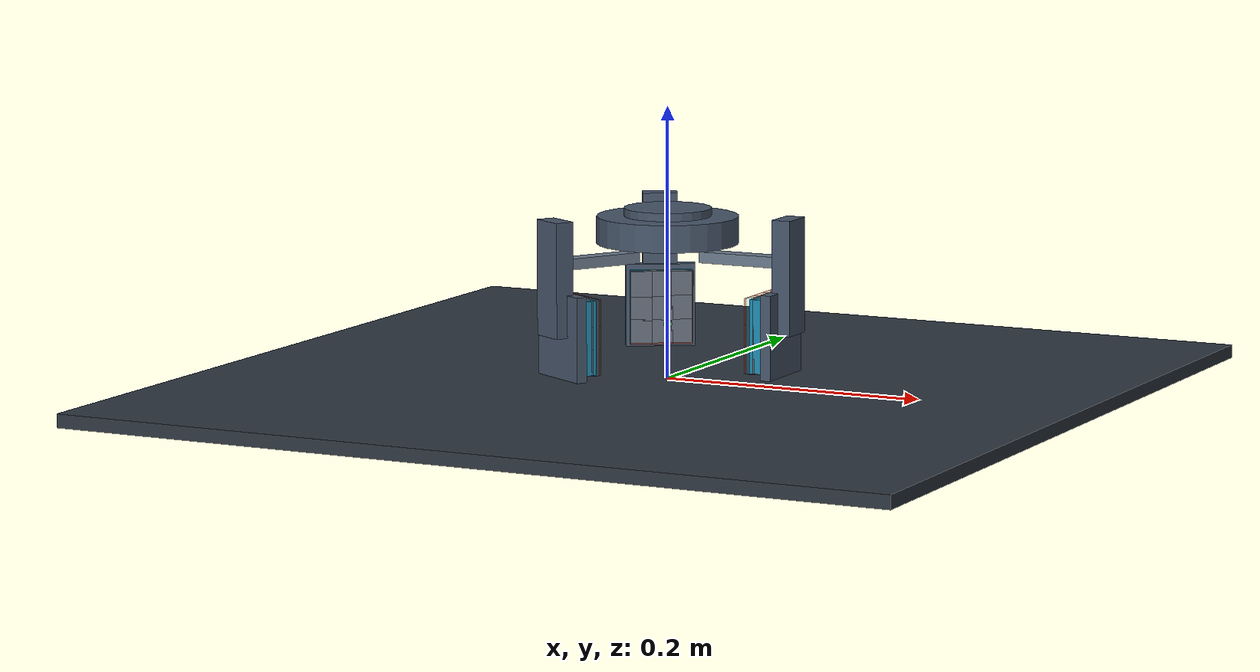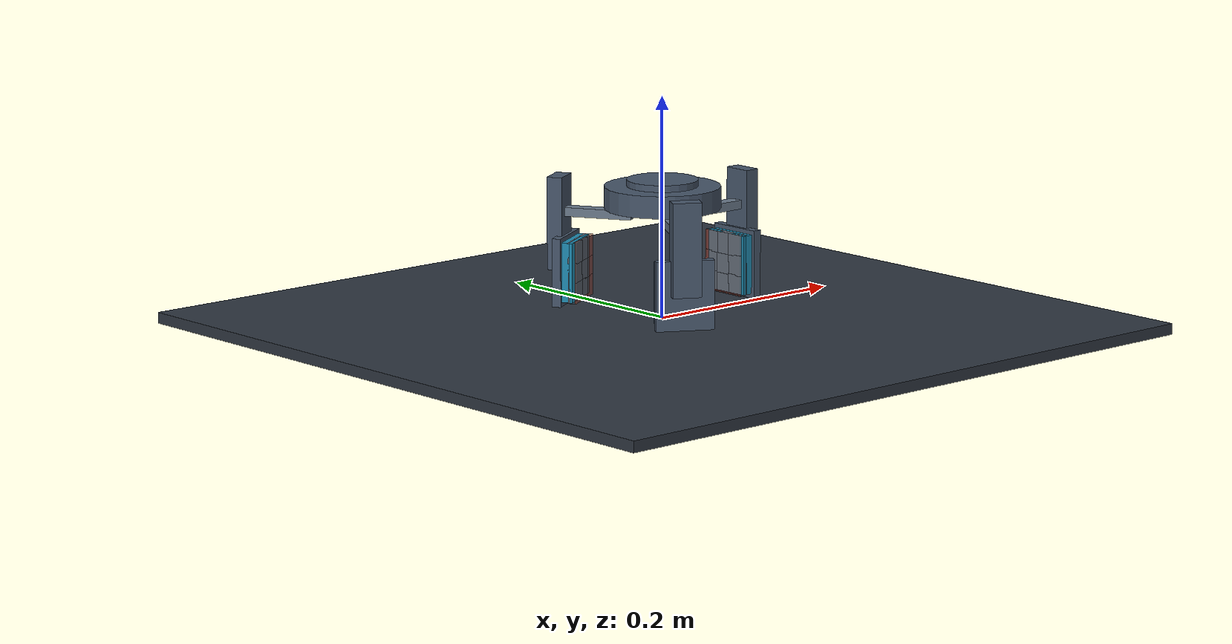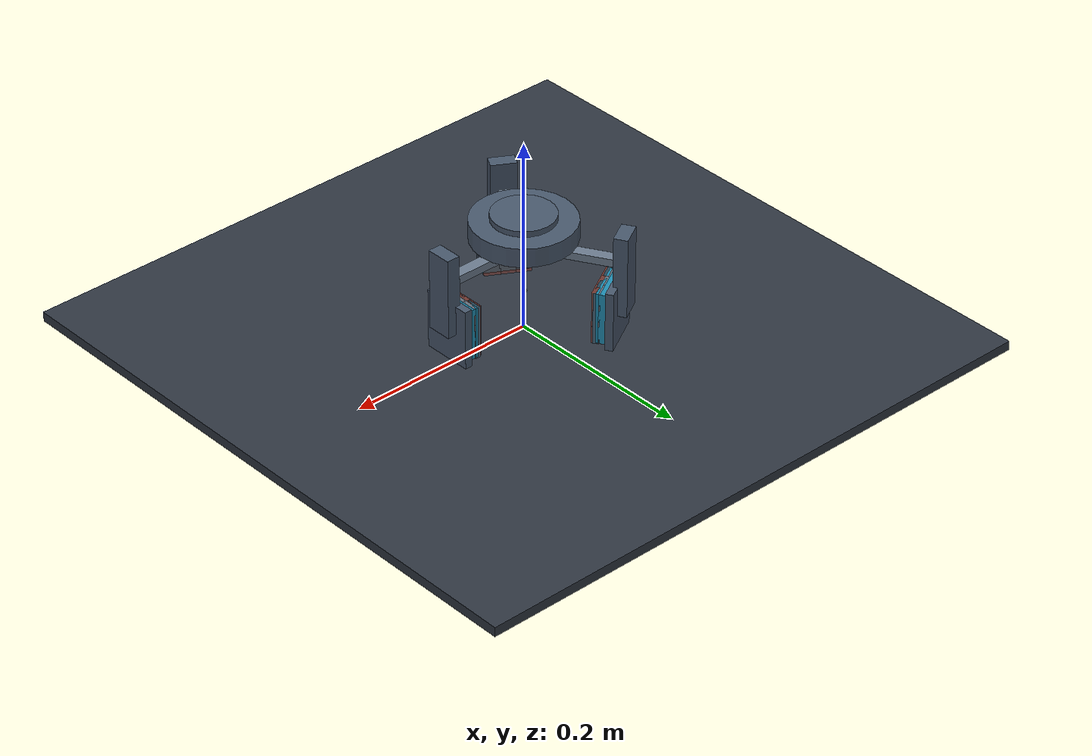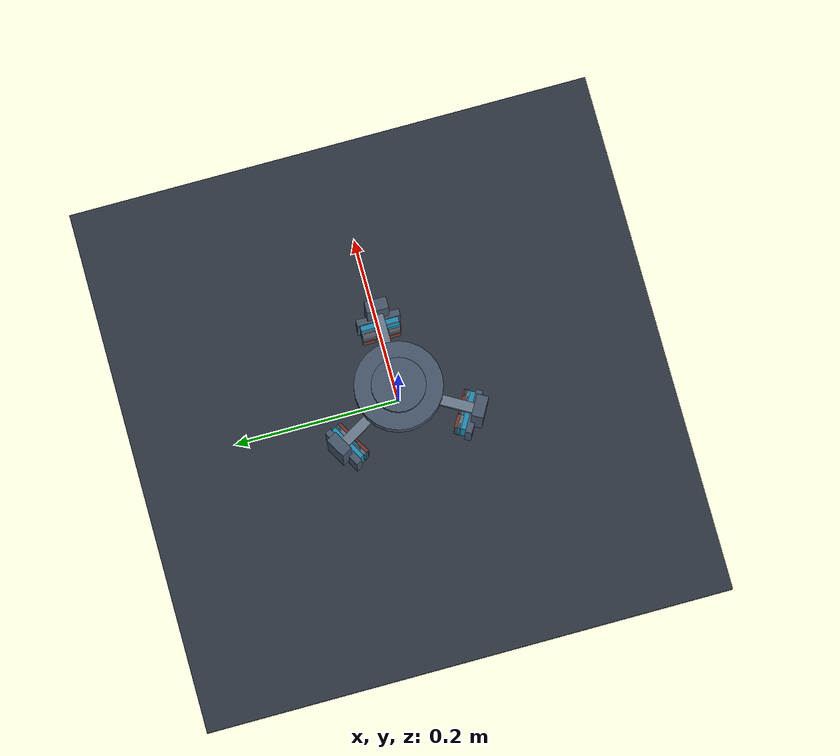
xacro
<?xml version="1.0"?>
<robot xmlns:xacro="http://www.ros.org/wiki/xacro" name="blindtouch_claw">

  <material name="floor">
    <color rgba="0.18 0.21 0.25 1"/>
  </material>
  <material name="frame">
    <color rgba="0.28 0.34 0.42 1"/>
  </material>
  <material name="rail">
    <color rgba="0.42 0.48 0.55 1"/>
  </material>
  <material name="pad">
    <color rgba="0.12 0.55 0.70 1"/>
  </material>
  <material name="taxel">
    <color rgba="0.95 0.25 0.10 0.35"/>
  </material>
  <material name="pad_zone">
    <color rgba="0.12 0.55 0.70 0.10"/>
  </material>
  <material name="site_green">
    <color rgba="0.30 0.85 0.40 1"/>
  </material>
  <material name="site_yellow">
    <color rgba="0.95 0.95 0.20 0.5"/>
  </material>

  <xacro:macro name="visual_collision_box" params="name xyz rpy size material">
    <visual name="${name}_visual">
      <origin xyz="${xyz}" rpy="${rpy}"/>
      <geometry>
        <box size="${size}"/>
      </geometry>
      <material name="${material}"/>
    </visual>
    <collision name="${name}_collision">
      <origin xyz="${xyz}" rpy="${rpy}"/>
      <geometry>
        <box size="${size}"/>
      </geometry>
    </collision>
  </xacro:macro>

  <xacro:macro name="visual_collision_cylinder" params="name xyz rpy radius length material">
    <visual name="${name}_visual">
      <origin xyz="${xyz}" rpy="${rpy}"/>
      <geometry>
        <cylinder radius="${radius}" length="${length}"/>
      </geometry>
      <material name="${material}"/>
    </visual>
    <collision name="${name}_collision">
      <origin xyz="${xyz}" rpy="${rpy}"/>
      <geometry>
        <cylinder radius="${radius}" length="${length}"/>
      </geometry>
    </collision>
  </xacro:macro>

  <xacro:macro name="fixed_sphere_marker" params="name parent xyz radius material">
    <link name="${name}">
      <visual name="${name}_visual">
        <geometry>
          <sphere radius="${radius}"/>
        </geometry>
        <material name="${material}"/>
      </visual>
    </link>
    <joint name="${name}_fixed" type="fixed">
      <parent link="${parent}"/>
      <child link="${name}"/>
      <origin xyz="${xyz}" rpy="0 0 0"/>
    </joint>
  </xacro:macro>

  <xacro:macro name="fixed_box_marker" params="name parent xyz size material">
    <link name="${name}">
      <visual name="${name}_visual">
        <geometry>
          <box size="${size}"/>
        </geometry>
        <material name="${material}"/>
      </visual>
    </link>
    <joint name="${name}_fixed" type="fixed">
      <parent link="${parent}"/>
      <child link="${name}"/>
      <origin xyz="${xyz}" rpy="0 0 0"/>
    </joint>
  </xacro:macro>

  <xacro:macro name="blindtouch_taxel_grid" params="finger">
    <xacro:fixed_box_marker name="finger_${finger}_taxel_r0_c0" parent="finger_${finger}" xyz="-0.008 -0.015 0.018" size="0.008 0.016 0.019" material="taxel"/>
    <xacro:fixed_box_marker name="finger_${finger}_taxel_r0_c1" parent="finger_${finger}" xyz="-0.008 0 0.018" size="0.008 0.016 0.019" material="taxel"/>
    <xacro:fixed_box_marker name="finger_${finger}_taxel_r0_c2" parent="finger_${finger}" xyz="-0.008 0.015 0.018" size="0.008 0.016 0.019" material="taxel"/>
    <xacro:fixed_box_marker name="finger_${finger}_taxel_r1_c0" parent="finger_${finger}" xyz="-0.008 -0.015 0" size="0.008 0.016 0.019" material="taxel"/>
    <xacro:fixed_box_marker name="finger_${finger}_taxel_r1_c1" parent="finger_${finger}" xyz="-0.008 0 0" size="0.008 0.016 0.019" material="taxel"/>
    <xacro:fixed_box_marker name="finger_${finger}_taxel_r1_c2" parent="finger_${finger}" xyz="-0.008 0.015 0" size="0.008 0.016 0.019" material="taxel"/>
    <xacro:fixed_box_marker name="finger_${finger}_taxel_r2_c0" parent="finger_${finger}" xyz="-0.008 -0.015 -0.018" size="0.008 0.016 0.019" material="taxel"/>
    <xacro:fixed_box_marker name="finger_${finger}_taxel_r2_c1" parent="finger_${finger}" xyz="-0.008 0 -0.018" size="0.008 0.016 0.019" material="taxel"/>
    <xacro:fixed_box_marker name="finger_${finger}_taxel_r2_c2" parent="finger_${finger}" xyz="-0.008 0.015 -0.018" size="0.008 0.016 0.019" material="taxel"/>
  </xacro:macro>

  <link name="world"/>

  <link name="table">
    <xacro:visual_collision_box
      name="table"
      xyz="0 0 0"
      rpy="0 0 0"
      size="0.64 0.64 0.01"
      material="floor"/>
  </link>
  <joint name="table_fixed" type="fixed">
    <parent link="world"/>
    <child link="table"/>
    <origin xyz="0 0 -0.005" rpy="0 0 0"/>
  </joint>

  <link name="palm">
    <xacro:visual_collision_cylinder
      name="palm_shell"
      xyz="0 0 0"
      rpy="0 0 0"
      radius="0.052"
      length="0.020"
      material="frame"/>
    <xacro:visual_collision_cylinder
      name="palm_cap"
      xyz="0 0 0.012"
      rpy="0 0 0"
      radius="0.032"
      length="0.008"
      material="frame"/>
    <xacro:visual_collision_box
      name="finger_1_rail"
      xyz="0.062 0 -0.018"
      rpy="0 0 0"
      size="0.068 0.012 0.008"
      material="rail"/>
    <xacro:visual_collision_box
      name="finger_2_rail"
      xyz="-0.031 0.053694 -0.018"
      rpy="0 0 2.09439510239"
      size="0.068 0.012 0.008"
      material="rail"/>
    <xacro:visual_collision_box
      name="finger_3_rail"
      xyz="-0.031 -0.053694 -0.018"
      rpy="0 0 -2.09439510239"
      size="0.068 0.012 0.008"
      material="rail"/>
    <inertial>
      <mass value="0.25"/>
      <inertia ixx="0.00024" ixy="0" ixz="0" iyy="0.00024" iyz="0" izz="0.00034"/>
    </inertial>
  </link>

  <joint name="palm_lift" type="prismatic">
    <parent link="world"/>
    <child link="palm"/>
    <origin xyz="0 0 0.11" rpy="0 0 0"/>
    <axis xyz="0 0 1"/>
    <limit lower="-0.02" upper="0.14" effort="80" velocity="0.20"/>
  </joint>

  <xacro:fixed_sphere_marker name="palm_frame" parent="palm" xyz="0 0 0" radius="0.003" material="site_green"/>
  <xacro:fixed_sphere_marker name="grasp_center" parent="palm" xyz="0 0 -0.070" radius="0.003" material="site_yellow"/>

  <xacro:macro name="blindtouch_finger" params="index x y yaw">
    <link name="finger_${index}">
      <xacro:visual_collision_box
        name="finger_${index}_link"
        xyz="0.012 0 0.042"
        rpy="0 0 0"
        size="0.014 0.026 0.084"
        material="frame"/>
      <xacro:visual_collision_box
        name="finger_${index}_carrier"
        xyz="0.006 0 0"
        rpy="0 0 0"
        size="0.008 0.052 0.062"
        material="frame"/>
      <xacro:visual_collision_box
        name="finger_${index}_pad"
        xyz="0 0 0"
        rpy="0 0 0"
        size="0.016 0.046 0.054"
        material="pad"/>
      <inertial>
        <mass value="0.045"/>
        <inertia ixx="0.00003" ixy="0" ixz="0" iyy="0.00003" iyz="0" izz="0.00002"/>
      </inertial>
    </link>

    <joint name="finger_${index}_close" type="prismatic">
      <parent link="palm"/>
      <child link="finger_${index}"/>
      <origin xyz="${x} ${y} -0.070" rpy="0 0 ${yaw}"/>
      <axis xyz="-1 0 0"/>
      <limit lower="0.0" upper="0.055" effort="15" velocity="0.20"/>
    </joint>

    <xacro:fixed_box_marker name="finger_${index}_pad_zone" parent="finger_${index}" xyz="-0.008 0 0" size="0.005 0.047 0.055" material="pad_zone"/>
    <xacro:blindtouch_taxel_grid finger="${index}"/>
  </xacro:macro>

  <xacro:blindtouch_finger index="1" x="0.085" y="0.0" yaw="0.0"/>
  <xacro:blindtouch_finger index="2" x="-0.0425" y="0.073612" yaw="2.09439510239"/>
  <xacro:blindtouch_finger index="3" x="-0.0425" y="-0.073612" yaw="-2.09439510239"/>
</robot>
